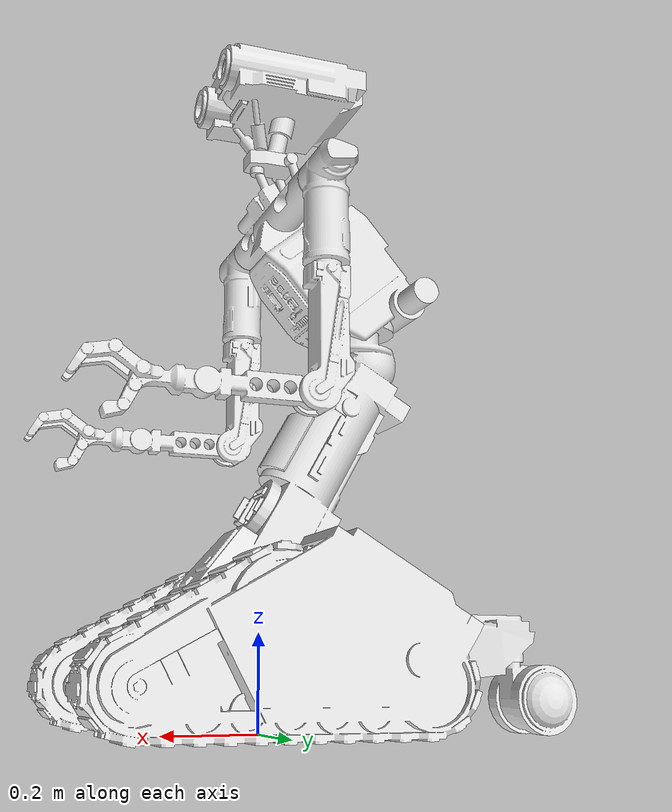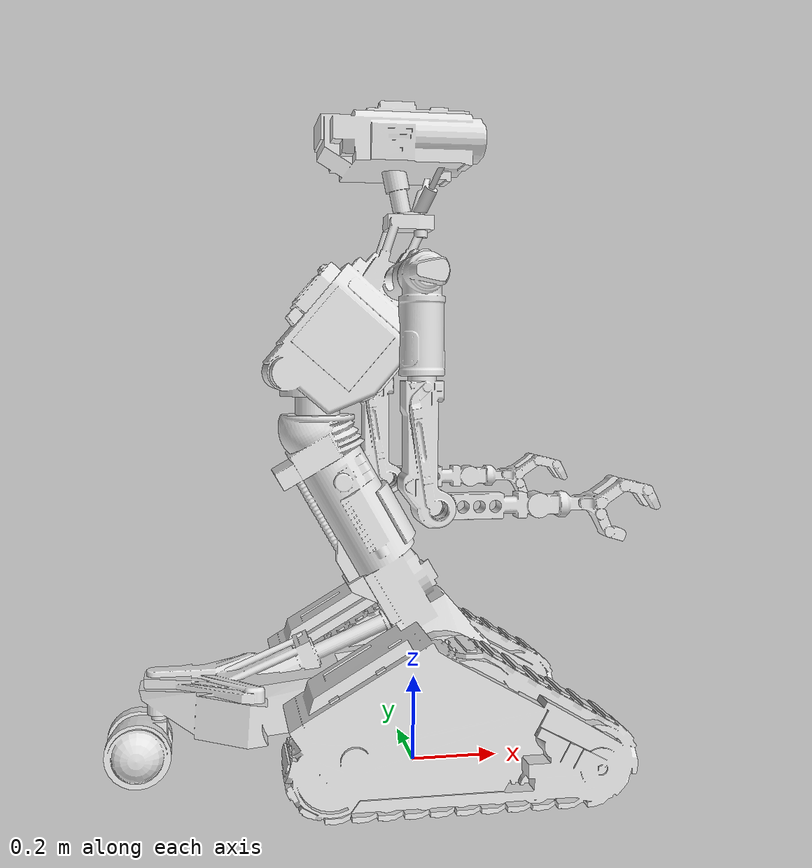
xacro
<?xml version="1.0"?>
<robot name="saint" xmlns:xacro="http://www.ros.org/wiki/xacro">

  <xacro:include filename="$(find nova_robot)/xacro/inertia.xacro"/>
  <xacro:include filename="$(find nova_robot)/xacro/materials.xacro"/>

  <xacro:property name="model_scale" value="0.01"/>

  <link name="base_footprint"/>

  <joint name="base_footprint_joint" type="fixed">
    <origin xyz="0 0 0" rpy="0 0 ${pi/2}"/>
    <parent link="base_footprint"/>
    <child link="base_link"/>
  </joint>

  <!-- BASE -->

  <link name="base_link">
    <visual>
      <origin xyz="0 0 0.1" rpy="0 0 0"/>
      <geometry>
        <mesh filename="package://nova_robot/meshes/Lower_Body.stl" scale="${model_scale} ${model_scale} ${model_scale}"/>
      </geometry>
      <material name="aluminium"/>
    </visual>
  </link>

  <joint name="left_tread_joint" type="fixed"> <!-- revolute -->
    <origin xyz="0.2 -0.05 0.22" rpy="0 0 0"/>
    <parent link="base_link"/>
    <child link="left_tread"/>
  </joint>
  <link name="left_tread">
    <visual>
      <origin xyz="-0.15 0.05 -0.22" rpy="0 0 0"/>
      <geometry>
        <mesh filename="package://nova_robot/meshes/Tread_Left.stl" scale="${model_scale} ${model_scale} ${model_scale}"/>
      </geometry>
      <material name="aluminium"/>
    </visual>
  </link>

  <joint name="right_tread_joint" type="fixed"> <!-- revolute -->
    <origin xyz="-0.2 -0.05 0.22" rpy="0 0 0"/>
    <parent link="base_link"/>
    <child link="right_tread"/>
  </joint>
  <link name="right_tread">
    <visual>
      <origin xyz="0.15 0.05 -0.22" rpy="0 0 0"/>
      <geometry>
        <mesh filename="package://nova_robot/meshes/Tread_Right.stl" scale="${model_scale} ${model_scale} ${model_scale}"/>
      </geometry>
      <material name="aluminium"/>
    </visual>
  </link>

  <joint name="rear_wheel_joint" type="fixed"> <!-- continuous -->
    <origin xyz="0 0.585 0.13" rpy="0 0 0"/>
    <parent link="base_link"/>
    <child link="rear_wheel"/>
    <axis xyz="0 0 1"/>
  </joint>
  <link name="rear_wheel">
    <visual>
      <origin xyz="0 -0.585 0" rpy="0 0 0"/>
      <geometry>
        <mesh filename="package://nova_robot/meshes/Rear_Wheel.stl" scale="${model_scale} ${model_scale} ${model_scale}"/>
      </geometry>
      <material name="aluminium"/>
    </visual>
  </link>

  <joint name="upper_body_joint" type="fixed"> <!-- revolute -->
    <origin xyz="0 0.22 0.82" rpy="0 0 0"/>
    <parent link="base_link"/>
    <child link="upper_body"/>
    <axis xyz="0 0 1"/>
  </joint>
  <link name="upper_body">
    <visual>
      <origin xyz="0 -0.22 0" rpy="0 0 0"/>
      <geometry>
        <mesh filename="package://nova_robot/meshes/Upper_Body.stl" scale="${model_scale} ${model_scale} ${model_scale}"/>
      </geometry>
      <material name="aluminium"/>
    </visual>
  </link>

  <!-- LEFT ARM -->

  <joint name="left_shoulder_joint" type="fixed">
    <origin xyz="0.22 -0.18 0.29" rpy="0 0 0"/>
    <parent link="upper_body"/>
    <child link="left_shoulder"/>
    <axis xyz="0 0 1"/>
  </joint>
  <link name="left_shoulder">
    <visual>
      <origin xyz="-0.22 -0.04 -0.204" rpy="0 0 0"/>
      <geometry>
        <mesh filename="package://nova_robot/meshes/Shoulder_Left.stl" scale="${model_scale} ${model_scale} ${model_scale}"/>
      </geometry>
      <material name="aluminium"/>
    </visual>
  </link>

  <joint name="left_upper_arm_joint" type="fixed">
    <origin xyz="0.06 0 -0.2" rpy="0 0 0"/>
    <parent link="left_shoulder"/>
    <child link="left_upper_arm"/>
    <axis xyz="0 0 1"/>
  </joint>
  <link name="left_upper_arm">
    <visual>
      <origin xyz="-0.28 -0.04 -0.31" rpy="0 0 0"/>
      <geometry>
        <mesh filename="package://nova_robot/meshes/UpperArm_Left.stl" scale="${model_scale} ${model_scale} ${model_scale}"/>
      </geometry>
      <material name="aluminium"/>
    </visual>
  </link>

  <joint name="left_lower_arm_joint" type="fixed">
    <origin xyz="0 -0.03 -0.275" rpy="0 0 0"/>
    <parent link="left_upper_arm"/>
    <child link="left_lower_arm"/>
    <axis xyz="0 0 1"/>
  </joint>
  <link name="left_lower_arm">
    <visual>
      <origin xyz="-0.28 -0.0115 -0.075" rpy="0 0 0"/>
      <geometry>
        <mesh filename="package://nova_robot/meshes/LowerArm.stl" scale="${model_scale} ${model_scale} ${model_scale}"/>
      </geometry>
      <material name="aluminium"/>
    </visual>
  </link>

  <!-- RIGHT ARM -->

  <joint name="right_shoulder_joint" type="fixed">
    <origin xyz="-0.22 -0.18 0.29" rpy="0 0 0"/>
    <parent link="upper_body"/>
    <child link="right_shoulder"/>
    <axis xyz="0 0 1"/>
  </joint>
  <link name="right_shoulder">
    <visual>
      <origin xyz="0.22 -0.04 -0.204" rpy="0 0 0"/>
      <geometry>
        <mesh filename="package://nova_robot/meshes/Shoulder_Right.stl" scale="${model_scale} ${model_scale} ${model_scale}"/>
      </geometry>
      <material name="aluminium"/>
    </visual>
  </link>

  <joint name="right_upper_arm_joint" type="fixed">
    <origin xyz="-0.06 0 -0.2" rpy="0 0 0"/>
    <parent link="right_shoulder"/>
    <child link="right_upper_arm"/>
    <axis xyz="0 0 1"/>
  </joint>
  <link name="right_upper_arm">
    <visual>
      <origin xyz="-0.28 -0.04 -0.31" rpy="0 0 0"/>
      <geometry>
        <mesh filename="package://nova_robot/meshes/UpperArm_Left.stl" scale="${model_scale} ${model_scale} ${model_scale}"/>
      </geometry>
      <material name="aluminium"/>
    </visual>
  </link>

  <joint name="right_lower_arm_joint" type="fixed">
    <origin xyz="0 -0.03 -0.275" rpy="0 0 0"/>
    <parent link="right_upper_arm"/>
    <child link="right_lower_arm"/>
    <axis xyz="0 0 1"/>
  </joint>
  <link name="right_lower_arm">
    <visual>
      <origin xyz="-0.28 -0.0115 -0.075" rpy="0 0 0"/>
      <geometry>
        <mesh filename="package://nova_robot/meshes/LowerArm.stl" scale="${model_scale} ${model_scale} ${model_scale}"/>
      </geometry>
      <material name="aluminium"/>
    </visual>
  </link>

  <joint name="head_joint" type="fixed">
    <origin xyz="0 -0.22 0.43" rpy="0 0 0"/>
    <parent link="upper_body"/>
    <child link="head"/>
    <axis xyz="0 0 1"/>
  </joint>
  <link name="head">
    <visual>
      <origin xyz="0 0 0" rpy="0 0 0"/>
      <geometry>
        <mesh filename="package://nova_robot/meshes/Head.stl" scale="${model_scale} ${model_scale} ${model_scale}"/>
      </geometry>
      <material name="aluminium"/>
    </visual>
  </link>

</robot>

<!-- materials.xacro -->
<robot xmlns:xacro="http://www.ros.org/wiki/xacro">

  <material name="rubber">
    <color rgba="0.4 0.4 0.4 1"/>
  </material>

  <material name="aluminium">
    <color rgba="0.9 0.9 0.9 1"/>
  </material>

  <material name="plastic">
    <color rgba="0.5 0.5 0.5 1"/>
  </material>

  <material name="plexi">
    <color rgba="0.8 0.9 1.0 0.3"/>
  </material>

</robot>
